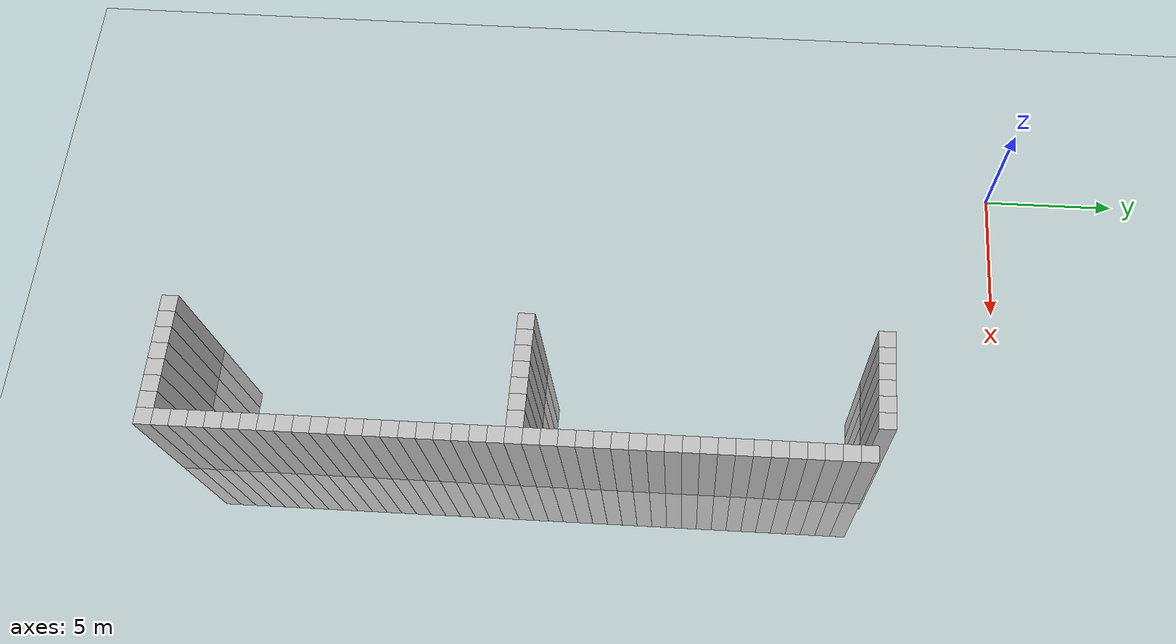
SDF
<sdf version="1.6">
 <world name="default">
  <model name="ground_plane">
   <static>1</static>
   <link name="link">
    <collision name="collision">
     <geometry><plane><normal>0 0 1</normal><size>100 100</size></plane></geometry>
     <surface><friction><ode><mu>100</mu><mu2>50</mu2></ode></friction></surface>
    </collision>
    <visual name="visual">
     <cast_shadows>0</cast_shadows>
     <geometry><plane><normal>0 0 1</normal><size>100 100</size></plane></geometry>
     <material>
      <script><uri>file://media/materials/scripts/gazebo.material</uri><name>Gazebo/Grey</name></script>
     </material>
    </visual>
   </link>
  </model>
  <model name="unit_cylinder_769">
   <static>1</static>
   <pose>8.4 -30 0 0 -0 0</pose>
   <link name="link">
    <inertial>
     <mass>1</mass>
     <inertia><ixx>0.145833</ixx><ixy>0</ixy><ixz>0</ixz><iyy>0.145833</iyy><iyz>0</iyz><izz>0.125</izz></inertia>
    </inertial>
    <collision name="collision"><geometry><box><size>0.6 0.6 10</size></box></geometry></collision>
    <visual name="visual">
     <geometry><box><size>0.6 0.6 10</size></box></geometry>
     <material><ambient>0.753 0.753 0.753 1</ambient><diffuse>0.753 0.753 0.753 1</diffuse></material>
     <material>
      <script><name>Gazebo/Grey</name><uri>file://media/materials/scripts/gazebo.material</uri></script>
     </material>
    </visual>
   </link>
  </model>
  <model name="unit_cylinder_770">
   <static>1</static>
   <pose>8.4 -17.4 0 0 -0 0</pose>
   <link name="link">
    <inertial>
     <mass>1</mass>
     <inertia><ixx>0.145833</ixx><ixy>0</ixy><ixz>0</ixz><iyy>0.145833</iyy><iyz>0</iyz><izz>0.125</izz></inertia>
    </inertial>
    <collision name="collision"><geometry><box><size>0.6 0.6 10</size></box></geometry></collision>
    <visual name="visual">
     <geometry><box><size>0.6 0.6 10</size></box></geometry>
     <material><ambient>0.753 0.753 0.753 1</ambient><diffuse>0.753 0.753 0.753 1</diffuse></material>
     <material>
      <script><name>Gazebo/Grey</name><uri>file://media/materials/scripts/gazebo.material</uri></script>
     </material>
    </visual>
   </link>
  </model>
  <model name="unit_cylinder_771">
   <static>1</static>
   <pose>8.4 -4.8 0 0 -0 0</pose>
   <link name="link">
    <inertial>
     <mass>1</mass>
     <inertia><ixx>0.145833</ixx><ixy>0</ixy><ixz>0</ixz><iyy>0.145833</iyy><iyz>0</iyz><izz>0.125</izz></inertia>
    </inertial>
    <collision name="collision"><geometry><box><size>0.6 0.6 10</size></box></geometry></collision>
    <visual name="visual">
     <geometry><box><size>0.6 0.6 10</size></box></geometry>
     <material><ambient>0.753 0.753 0.753 1</ambient><diffuse>0.753 0.753 0.753 1</diffuse></material>
     <material>
      <script><name>Gazebo/Grey</name><uri>file://media/materials/scripts/gazebo.material</uri></script>
     </material>
    </visual>
   </link>
  </model>
  <model name="unit_cylinder_772">
   <static>1</static>
   <pose>9 -30 0 0 -0 0</pose>
   <link name="link">
    <inertial>
     <mass>1</mass>
     <inertia><ixx>0.145833</ixx><ixy>0</ixy><ixz>0</ixz><iyy>0.145833</iyy><iyz>0</iyz><izz>0.125</izz></inertia>
    </inertial>
    <collision name="collision"><geometry><box><size>0.6 0.6 10</size></box></geometry></collision>
    <visual name="visual">
     <geometry><box><size>0.6 0.6 10</size></box></geometry>
     <material><ambient>0.753 0.753 0.753 1</ambient><diffuse>0.753 0.753 0.753 1</diffuse></material>
     <material>
      <script><name>Gazebo/Grey</name><uri>file://media/materials/scripts/gazebo.material</uri></script>
     </material>
    </visual>
   </link>
  </model>
  <model name="unit_cylinder_773">
   <static>1</static>
   <pose>9 -17.4 0 0 -0 0</pose>
   <link name="link">
    <inertial>
     <mass>1</mass>
     <inertia><ixx>0.145833</ixx><ixy>0</ixy><ixz>0</ixz><iyy>0.145833</iyy><iyz>0</iyz><izz>0.125</izz></inertia>
    </inertial>
    <collision name="collision"><geometry><box><size>0.6 0.6 10</size></box></geometry></collision>
    <visual name="visual">
     <geometry><box><size>0.6 0.6 10</size></box></geometry>
     <material><ambient>0.753 0.753 0.753 1</ambient><diffuse>0.753 0.753 0.753 1</diffuse></material>
     <material>
      <script><name>Gazebo/Grey</name><uri>file://media/materials/scripts/gazebo.material</uri></script>
     </material>
    </visual>
   </link>
  </model>
  <model name="unit_cylinder_774">
   <static>1</static>
   <pose>9 -4.8 0 0 -0 0</pose>
   <link name="link">
    <inertial>
     <mass>1</mass>
     <inertia><ixx>0.145833</ixx><ixy>0</ixy><ixz>0</ixz><iyy>0.145833</iyy><iyz>0</iyz><izz>0.125</izz></inertia>
    </inertial>
    <collision name="collision"><geometry><box><size>0.6 0.6 10</size></box></geometry></collision>
    <visual name="visual">
     <geometry><box><size>0.6 0.6 10</size></box></geometry>
     <material><ambient>0.753 0.753 0.753 1</ambient><diffuse>0.753 0.753 0.753 1</diffuse></material>
     <material>
      <script><name>Gazebo/Grey</name><uri>file://media/materials/scripts/gazebo.material</uri></script>
     </material>
    </visual>
   </link>
  </model>
  <model name="unit_cylinder_775">
   <static>1</static>
   <pose>9.6 -30 0 0 -0 0</pose>
   <link name="link">
    <inertial>
     <mass>1</mass>
     <inertia><ixx>0.145833</ixx><ixy>0</ixy><ixz>0</ixz><iyy>0.145833</iyy><iyz>0</iyz><izz>0.125</izz></inertia>
    </inertial>
    <collision name="collision"><geometry><box><size>0.6 0.6 10</size></box></geometry></collision>
    <visual name="visual">
     <geometry><box><size>0.6 0.6 10</size></box></geometry>
     <material><ambient>0.753 0.753 0.753 1</ambient><diffuse>0.753 0.753 0.753 1</diffuse></material>
     <material>
      <script><name>Gazebo/Grey</name><uri>file://media/materials/scripts/gazebo.material</uri></script>
     </material>
    </visual>
   </link>
  </model>
  <model name="unit_cylinder_776">
   <static>1</static>
   <pose>9.6 -17.4 0 0 -0 0</pose>
   <link name="link">
    <inertial>
     <mass>1</mass>
     <inertia><ixx>0.145833</ixx><ixy>0</ixy><ixz>0</ixz><iyy>0.145833</iyy><iyz>0</iyz><izz>0.125</izz></inertia>
    </inertial>
    <collision name="collision"><geometry><box><size>0.6 0.6 10</size></box></geometry></collision>
    <visual name="visual">
     <geometry><box><size>0.6 0.6 10</size></box></geometry>
     <material><ambient>0.753 0.753 0.753 1</ambient><diffuse>0.753 0.753 0.753 1</diffuse></material>
     <material>
      <script><name>Gazebo/Grey</name><uri>file://media/materials/scripts/gazebo.material</uri></script>
     </material>
    </visual>
   </link>
  </model>
  <model name="unit_cylinder_777">
   <static>1</static>
   <pose>9.6 -4.8 0 0 -0 0</pose>
   <link name="link">
    <inertial>
     <mass>1</mass>
     <inertia><ixx>0.145833</ixx><ixy>0</ixy><ixz>0</ixz><iyy>0.145833</iyy><iyz>0</iyz><izz>0.125</izz></inertia>
    </inertial>
    <collision name="collision"><geometry><box><size>0.6 0.6 10</size></box></geometry></collision>
    <visual name="visual">
     <geometry><box><size>0.6 0.6 10</size></box></geometry>
     <material><ambient>0.753 0.753 0.753 1</ambient><diffuse>0.753 0.753 0.753 1</diffuse></material>
     <material>
      <script><name>Gazebo/Grey</name><uri>file://media/materials/scripts/gazebo.material</uri></script>
     </material>
    </visual>
   </link>
  </model>
  <model name="unit_cylinder_778">
   <static>1</static>
   <pose>10.2 -30 0 0 -0 0</pose>
   <link name="link">
    <inertial>
     <mass>1</mass>
     <inertia><ixx>0.145833</ixx><ixy>0</ixy><ixz>0</ixz><iyy>0.145833</iyy><iyz>0</iyz><izz>0.125</izz></inertia>
    </inertial>
    <collision name="collision"><geometry><box><size>0.6 0.6 10</size></box></geometry></collision>
    <visual name="visual">
     <geometry><box><size>0.6 0.6 10</size></box></geometry>
     <material><ambient>0.753 0.753 0.753 1</ambient><diffuse>0.753 0.753 0.753 1</diffuse></material>
     <material>
      <script><name>Gazebo/Grey</name><uri>file://media/materials/scripts/gazebo.material</uri></script>
     </material>
    </visual>
   </link>
  </model>
  <model name="unit_cylinder_779">
   <static>1</static>
   <pose>10.2 -17.4 0 0 -0 0</pose>
   <link name="link">
    <inertial>
     <mass>1</mass>
     <inertia><ixx>0.145833</ixx><ixy>0</ixy><ixz>0</ixz><iyy>0.145833</iyy><iyz>0</iyz><izz>0.125</izz></inertia>
    </inertial>
    <collision name="collision"><geometry><box><size>0.6 0.6 10</size></box></geometry></collision>
    <visual name="visual">
     <geometry><box><size>0.6 0.6 10</size></box></geometry>
     <material><ambient>0.753 0.753 0.753 1</ambient><diffuse>0.753 0.753 0.753 1</diffuse></material>
     <material>
      <script><name>Gazebo/Grey</name><uri>file://media/materials/scripts/gazebo.material</uri></script>
     </material>
    </visual>
   </link>
  </model>
  <model name="unit_cylinder_780">
   <static>1</static>
   <pose>10.2 -4.8 0 0 -0 0</pose>
   <link name="link">
    <inertial>
     <mass>1</mass>
     <inertia><ixx>0.145833</ixx><ixy>0</ixy><ixz>0</ixz><iyy>0.145833</iyy><iyz>0</iyz><izz>0.125</izz></inertia>
    </inertial>
    <collision name="collision"><geometry><box><size>0.6 0.6 10</size></box></geometry></collision>
    <visual name="visual">
     <geometry><box><size>0.6 0.6 10</size></box></geometry>
     <material><ambient>0.753 0.753 0.753 1</ambient><diffuse>0.753 0.753 0.753 1</diffuse></material>
     <material>
      <script><name>Gazebo/Grey</name><uri>file://media/materials/scripts/gazebo.material</uri></script>
     </material>
    </visual>
   </link>
  </model>
  <model name="unit_cylinder_781">
   <static>1</static>
   <pose>10.8 -30 0 0 -0 0</pose>
   <link name="link">
    <inertial>
     <mass>1</mass>
     <inertia><ixx>0.145833</ixx><ixy>0</ixy><ixz>0</ixz><iyy>0.145833</iyy><iyz>0</iyz><izz>0.125</izz></inertia>
    </inertial>
    <collision name="collision"><geometry><box><size>0.6 0.6 10</size></box></geometry></collision>
    <visual name="visual">
     <geometry><box><size>0.6 0.6 10</size></box></geometry>
     <material><ambient>0.753 0.753 0.753 1</ambient><diffuse>0.753 0.753 0.753 1</diffuse></material>
     <material>
      <script><name>Gazebo/Grey</name><uri>file://media/materials/scripts/gazebo.material</uri></script>
     </material>
    </visual>
   </link>
  </model>
  <model name="unit_cylinder_782">
   <static>1</static>
   <pose>10.8 -17.4 0 0 -0 0</pose>
   <link name="link">
    <inertial>
     <mass>1</mass>
     <inertia><ixx>0.145833</ixx><ixy>0</ixy><ixz>0</ixz><iyy>0.145833</iyy><iyz>0</iyz><izz>0.125</izz></inertia>
    </inertial>
    <collision name="collision"><geometry><box><size>0.6 0.6 10</size></box></geometry></collision>
    <visual name="visual">
     <geometry><box><size>0.6 0.6 10</size></box></geometry>
     <material><ambient>0.753 0.753 0.753 1</ambient><diffuse>0.753 0.753 0.753 1</diffuse></material>
     <material>
      <script><name>Gazebo/Grey</name><uri>file://media/materials/scripts/gazebo.material</uri></script>
     </material>
    </visual>
   </link>
  </model>
  <model name="unit_cylinder_783">
   <static>1</static>
   <pose>10.8 -4.8 0 0 -0 0</pose>
   <link name="link">
    <inertial>
     <mass>1</mass>
     <inertia><ixx>0.145833</ixx><ixy>0</ixy><ixz>0</ixz><iyy>0.145833</iyy><iyz>0</iyz><izz>0.125</izz></inertia>
    </inertial>
    <collision name="collision"><geometry><box><size>0.6 0.6 10</size></box></geometry></collision>
    <visual name="visual">
     <geometry><box><size>0.6 0.6 10</size></box></geometry>
     <material><ambient>0.753 0.753 0.753 1</ambient><diffuse>0.753 0.753 0.753 1</diffuse></material>
     <material>
      <script><name>Gazebo/Grey</name><uri>file://media/materials/scripts/gazebo.material</uri></script>
     </material>
    </visual>
   </link>
  </model>
  <model name="unit_cylinder_784">
   <static>1</static>
   <pose>11.4 -30 0 0 -0 0</pose>
   <link name="link">
    <inertial>
     <mass>1</mass>
     <inertia><ixx>0.145833</ixx><ixy>0</ixy><ixz>0</ixz><iyy>0.145833</iyy><iyz>0</iyz><izz>0.125</izz></inertia>
    </inertial>
    <collision name="collision"><geometry><box><size>0.6 0.6 10</size></box></geometry></collision>
    <visual name="visual">
     <geometry><box><size>0.6 0.6 10</size></box></geometry>
     <material><ambient>0.753 0.753 0.753 1</ambient><diffuse>0.753 0.753 0.753 1</diffuse></material>
     <material>
      <script><name>Gazebo/Grey</name><uri>file://media/materials/scripts/gazebo.material</uri></script>
     </material>
    </visual>
   </link>
  </model>
  <model name="unit_cylinder_785">
   <static>1</static>
   <pose>11.4 -17.4 0 0 -0 0</pose>
   <link name="link">
    <inertial>
     <mass>1</mass>
     <inertia><ixx>0.145833</ixx><ixy>0</ixy><ixz>0</ixz><iyy>0.145833</iyy><iyz>0</iyz><izz>0.125</izz></inertia>
    </inertial>
    <collision name="collision"><geometry><box><size>0.6 0.6 10</size></box></geometry></collision>
    <visual name="visual">
     <geometry><box><size>0.6 0.6 10</size></box></geometry>
     <material><ambient>0.753 0.753 0.753 1</ambient><diffuse>0.753 0.753 0.753 1</diffuse></material>
     <material>
      <script><name>Gazebo/Grey</name><uri>file://media/materials/scripts/gazebo.material</uri></script>
     </material>
    </visual>
   </link>
  </model>
  <model name="unit_cylinder_786">
   <static>1</static>
   <pose>11.4 -4.8 0 0 -0 0</pose>
   <link name="link">
    <inertial>
     <mass>1</mass>
     <inertia><ixx>0.145833</ixx><ixy>0</ixy><ixz>0</ixz><iyy>0.145833</iyy><iyz>0</iyz><izz>0.125</izz></inertia>
    </inertial>
    <collision name="collision"><geometry><box><size>0.6 0.6 10</size></box></geometry></collision>
    <visual name="visual">
     <geometry><box><size>0.6 0.6 10</size></box></geometry>
     <material><ambient>0.753 0.753 0.753 1</ambient><diffuse>0.753 0.753 0.753 1</diffuse></material>
     <material>
      <script><name>Gazebo/Grey</name><uri>file://media/materials/scripts/gazebo.material</uri></script>
     </material>
    </visual>
   </link>
  </model>
  <model name="unit_cylinder_787">
   <static>1</static>
   <pose>12 -30 0 0 -0 0</pose>
   <link name="link">
    <inertial>
     <mass>1</mass>
     <inertia><ixx>0.145833</ixx><ixy>0</ixy><ixz>0</ixz><iyy>0.145833</iyy><iyz>0</iyz><izz>0.125</izz></inertia>
    </inertial>
    <collision name="collision"><geometry><box><size>0.6 0.6 10</size></box></geometry></collision>
    <visual name="visual">
     <geometry><box><size>0.6 0.6 10</size></box></geometry>
     <material><ambient>0.753 0.753 0.753 1</ambient><diffuse>0.753 0.753 0.753 1</diffuse></material>
     <material>
      <script><name>Gazebo/Grey</name><uri>file://media/materials/scripts/gazebo.material</uri></script>
     </material>
    </visual>
   </link>
  </model>
  <model name="unit_cylinder_788">
   <static>1</static>
   <pose>12 -17.4 0 0 -0 0</pose>
   <link name="link">
    <inertial>
     <mass>1</mass>
     <inertia><ixx>0.145833</ixx><ixy>0</ixy><ixz>0</ixz><iyy>0.145833</iyy><iyz>0</iyz><izz>0.125</izz></inertia>
    </inertial>
    <collision name="collision"><geometry><box><size>0.6 0.6 10</size></box></geometry></collision>
    <visual name="visual">
     <geometry><box><size>0.6 0.6 10</size></box></geometry>
     <material><ambient>0.753 0.753 0.753 1</ambient><diffuse>0.753 0.753 0.753 1</diffuse></material>
     <material>
      <script><name>Gazebo/Grey</name><uri>file://media/materials/scripts/gazebo.material</uri></script>
     </material>
    </visual>
   </link>
  </model>
  <model name="unit_cylinder_790">
   <static>1</static>
   <pose>12.6 -30 0 0 -0 0</pose>
   <link name="link">
    <inertial>
     <mass>1</mass>
     <inertia><ixx>0.145833</ixx><ixy>0</ixy><ixz>0</ixz><iyy>0.145833</iyy><iyz>0</iyz><izz>0.125</izz></inertia>
    </inertial>
    <collision name="collision"><geometry><box><size>0.6 0.6 10</size></box></geometry></collision>
    <visual name="visual">
     <geometry><box><size>0.6 0.6 10</size></box></geometry>
     <material><ambient>0.753 0.753 0.753 1</ambient><diffuse>0.753 0.753 0.753 1</diffuse></material>
     <material>
      <script><name>Gazebo/Grey</name><uri>file://media/materials/scripts/gazebo.material</uri></script>
     </material>
    </visual>
   </link>
  </model>
  <model name="unit_cylinder_791">
   <static>1</static>
   <pose>12.6 -29.4 0 0 -0 0</pose>
   <link name="link">
    <inertial>
     <mass>1</mass>
     <inertia><ixx>0.145833</ixx><ixy>0</ixy><ixz>0</ixz><iyy>0.145833</iyy><iyz>0</iyz><izz>0.125</izz></inertia>
    </inertial>
    <collision name="collision"><geometry><box><size>0.6 0.6 10</size></box></geometry></collision>
    <visual name="visual">
     <geometry><box><size>0.6 0.6 10</size></box></geometry>
     <material><ambient>0.753 0.753 0.753 1</ambient><diffuse>0.753 0.753 0.753 1</diffuse></material>
     <material>
      <script><name>Gazebo/Grey</name><uri>file://media/materials/scripts/gazebo.material</uri></script>
     </material>
    </visual>
   </link>
  </model>
  <model name="unit_cylinder_792">
   <static>1</static>
   <pose>12.6 -28.8 0 0 -0 0</pose>
   <link name="link">
    <inertial>
     <mass>1</mass>
     <inertia><ixx>0.145833</ixx><ixy>0</ixy><ixz>0</ixz><iyy>0.145833</iyy><iyz>0</iyz><izz>0.125</izz></inertia>
    </inertial>
    <collision name="collision"><geometry><box><size>0.6 0.6 10</size></box></geometry></collision>
    <visual name="visual">
     <geometry><box><size>0.6 0.6 10</size></box></geometry>
     <material><ambient>0.753 0.753 0.753 1</ambient><diffuse>0.753 0.753 0.753 1</diffuse></material>
     <material>
      <script><name>Gazebo/Grey</name><uri>file://media/materials/scripts/gazebo.material</uri></script>
     </material>
    </visual>
   </link>
  </model>
  <model name="unit_cylinder_793">
   <static>1</static>
   <pose>12.6 -28.2 0 0 -0 0</pose>
   <link name="link">
    <inertial>
     <mass>1</mass>
     <inertia><ixx>0.145833</ixx><ixy>0</ixy><ixz>0</ixz><iyy>0.145833</iyy><iyz>0</iyz><izz>0.125</izz></inertia>
    </inertial>
    <collision name="collision"><geometry><box><size>0.6 0.6 10</size></box></geometry></collision>
    <visual name="visual">
     <geometry><box><size>0.6 0.6 10</size></box></geometry>
     <material><ambient>0.753 0.753 0.753 1</ambient><diffuse>0.753 0.753 0.753 1</diffuse></material>
     <material>
      <script><name>Gazebo/Grey</name><uri>file://media/materials/scripts/gazebo.material</uri></script>
     </material>
    </visual>
   </link>
  </model>
  <model name="unit_cylinder_794">
   <static>1</static>
   <pose>12.6 -27.6 0 0 -0 0</pose>
   <link name="link">
    <inertial>
     <mass>1</mass>
     <inertia><ixx>0.145833</ixx><ixy>0</ixy><ixz>0</ixz><iyy>0.145833</iyy><iyz>0</iyz><izz>0.125</izz></inertia>
    </inertial>
    <collision name="collision"><geometry><box><size>0.6 0.6 10</size></box></geometry></collision>
    <visual name="visual">
     <geometry><box><size>0.6 0.6 10</size></box></geometry>
     <material><ambient>0.753 0.753 0.753 1</ambient><diffuse>0.753 0.753 0.753 1</diffuse></material>
     <material>
      <script><name>Gazebo/Grey</name><uri>file://media/materials/scripts/gazebo.material</uri></script>
     </material>
    </visual>
   </link>
  </model>
  <model name="unit_cylinder_795">
   <static>1</static>
   <pose>12.6 -27 0 0 -0 0</pose>
   <link name="link">
    <inertial>
     <mass>1</mass>
     <inertia><ixx>0.145833</ixx><ixy>0</ixy><ixz>0</ixz><iyy>0.145833</iyy><iyz>0</iyz><izz>0.125</izz></inertia>
    </inertial>
    <collision name="collision"><geometry><box><size>0.6 0.6 10</size></box></geometry></collision>
    <visual name="visual">
     <geometry><box><size>0.6 0.6 10</size></box></geometry>
     <material><ambient>0.753 0.753 0.753 1</ambient><diffuse>0.753 0.753 0.753 1</diffuse></material>
     <material>
      <script><name>Gazebo/Grey</name><uri>file://media/materials/scripts/gazebo.material</uri></script>
     </material>
    </visual>
   </link>
  </model>
  <model name="unit_cylinder_796">
   <static>1</static>
   <pose>12.6 -26.4 0 0 -0 0</pose>
   <link name="link">
    <inertial>
     <mass>1</mass>
     <inertia><ixx>0.145833</ixx><ixy>0</ixy><ixz>0</ixz><iyy>0.145833</iyy><iyz>0</iyz><izz>0.125</izz></inertia>
    </inertial>
    <collision name="collision"><geometry><box><size>0.6 0.6 10</size></box></geometry></collision>
    <visual name="visual">
     <geometry><box><size>0.6 0.6 10</size></box></geometry>
     <material><ambient>0.753 0.753 0.753 1</ambient><diffuse>0.753 0.753 0.753 1</diffuse></material>
     <material>
      <script><name>Gazebo/Grey</name><uri>file://media/materials/scripts/gazebo.material</uri></script>
     </material>
    </visual>
   </link>
  </model>
  <model name="unit_cylinder_797">
   <static>1</static>
   <pose>12.6 -25.8 0 0 -0 0</pose>
   <link name="link">
    <inertial>
     <mass>1</mass>
     <inertia><ixx>0.145833</ixx><ixy>0</ixy><ixz>0</ixz><iyy>0.145833</iyy><iyz>0</iyz><izz>0.125</izz></inertia>
    </inertial>
    <collision name="collision"><geometry><box><size>0.6 0.6 10</size></box></geometry></collision>
    <visual name="visual">
     <geometry><box><size>0.6 0.6 10</size></box></geometry>
     <material><ambient>0.753 0.753 0.753 1</ambient><diffuse>0.753 0.753 0.753 1</diffuse></material>
     <material>
      <script><name>Gazebo/Grey</name><uri>file://media/materials/scripts/gazebo.material</uri></script>
     </material>
    </visual>
   </link>
  </model>
  <model name="unit_cylinder_798">
   <static>1</static>
   <pose>12.6 -25.2 0 0 -0 0</pose>
   <link name="link">
    <inertial>
     <mass>1</mass>
     <inertia><ixx>0.145833</ixx><ixy>0</ixy><ixz>0</ixz><iyy>0.145833</iyy><iyz>0</iyz><izz>0.125</izz></inertia>
    </inertial>
    <collision name="collision"><geometry><box><size>0.6 0.6 10</size></box></geometry></collision>
    <visual name="visual">
     <geometry><box><size>0.6 0.6 10</size></box></geometry>
     <material><ambient>0.753 0.753 0.753 1</ambient><diffuse>0.753 0.753 0.753 1</diffuse></material>
     <material>
      <script><name>Gazebo/Grey</name><uri>file://media/materials/scripts/gazebo.material</uri></script>
     </material>
    </visual>
   </link>
  </model>
  <model name="unit_cylinder_799">
   <static>1</static>
   <pose>12.6 -24.6 0 0 -0 0</pose>
   <link name="link">
    <inertial>
     <mass>1</mass>
     <inertia><ixx>0.145833</ixx><ixy>0</ixy><ixz>0</ixz><iyy>0.145833</iyy><iyz>0</iyz><izz>0.125</izz></inertia>
    </inertial>
    <collision name="collision"><geometry><box><size>0.6 0.6 10</size></box></geometry></collision>
    <visual name="visual">
     <geometry><box><size>0.6 0.6 10</size></box></geometry>
     <material><ambient>0.753 0.753 0.753 1</ambient><diffuse>0.753 0.753 0.753 1</diffuse></material>
     <material>
      <script><name>Gazebo/Grey</name><uri>file://media/materials/scripts/gazebo.material</uri></script>
     </material>
    </visual>
   </link>
  </model>
  <model name="unit_cylinder_800">
   <static>1</static>
   <pose>12.6 -24 0 0 -0 0</pose>
   <link name="link">
    <inertial>
     <mass>1</mass>
     <inertia><ixx>0.145833</ixx><ixy>0</ixy><ixz>0</ixz><iyy>0.145833</iyy><iyz>0</iyz><izz>0.125</izz></inertia>
    </inertial>
    <collision name="collision"><geometry><box><size>0.6 0.6 10</size></box></geometry></collision>
    <visual name="visual">
     <geometry><box><size>0.6 0.6 10</size></box></geometry>
     <material><ambient>0.753 0.753 0.753 1</ambient><diffuse>0.753 0.753 0.753 1</diffuse></material>
     <material>
      <script><name>Gazebo/Grey</name><uri>file://media/materials/scripts/gazebo.material</uri></script>
     </material>
    </visual>
   </link>
  </model>
  <model name="unit_cylinder_801">
   <static>1</static>
   <pose>12.6 -23.4 0 0 -0 0</pose>
   <link name="link">
    <inertial>
     <mass>1</mass>
     <inertia><ixx>0.145833</ixx><ixy>0</ixy><ixz>0</ixz><iyy>0.145833</iyy><iyz>0</iyz><izz>0.125</izz></inertia>
    </inertial>
    <collision name="collision"><geometry><box><size>0.6 0.6 10</size></box></geometry></collision>
    <visual name="visual">
     <geometry><box><size>0.6 0.6 10</size></box></geometry>
     <material><ambient>0.753 0.753 0.753 1</ambient><diffuse>0.753 0.753 0.753 1</diffuse></material>
     <material>
      <script><name>Gazebo/Grey</name><uri>file://media/materials/scripts/gazebo.material</uri></script>
     </material>
    </visual>
   </link>
  </model>
  <model name="unit_cylinder_802">
   <static>1</static>
   <pose>12.6 -22.8 0 0 -0 0</pose>
   <link name="link">
    <inertial>
     <mass>1</mass>
     <inertia><ixx>0.145833</ixx><ixy>0</ixy><ixz>0</ixz><iyy>0.145833</iyy><iyz>0</iyz><izz>0.125</izz></inertia>
    </inertial>
    <collision name="collision"><geometry><box><size>0.6 0.6 10</size></box></geometry></collision>
    <visual name="visual">
     <geometry><box><size>0.6 0.6 10</size></box></geometry>
     <material><ambient>0.753 0.753 0.753 1</ambient><diffuse>0.753 0.753 0.753 1</diffuse></material>
     <material>
      <script><name>Gazebo/Grey</name><uri>file://media/materials/scripts/gazebo.material</uri></script>
     </material>
    </visual>
   </link>
  </model>
  <model name="unit_cylinder_803">
   <static>1</static>
   <pose>12.6 -22.2 0 0 -0 0</pose>
   <link name="link">
    <inertial>
     <mass>1</mass>
     <inertia><ixx>0.145833</ixx><ixy>0</ixy><ixz>0</ixz><iyy>0.145833</iyy><iyz>0</iyz><izz>0.125</izz></inertia>
    </inertial>
    <collision name="collision"><geometry><box><size>0.6 0.6 10</size></box></geometry></collision>
    <visual name="visual">
     <geometry><box><size>0.6 0.6 10</size></box></geometry>
     <material><ambient>0.753 0.753 0.753 1</ambient><diffuse>0.753 0.753 0.753 1</diffuse></material>
     <material>
      <script><name>Gazebo/Grey</name><uri>file://media/materials/scripts/gazebo.material</uri></script>
     </material>
    </visual>
   </link>
  </model>
  <model name="unit_cylinder_804">
   <static>1</static>
   <pose>12.6 -21.6 0 0 -0 0</pose>
   <link name="link">
    <inertial>
     <mass>1</mass>
     <inertia><ixx>0.145833</ixx><ixy>0</ixy><ixz>0</ixz><iyy>0.145833</iyy><iyz>0</iyz><izz>0.125</izz></inertia>
    </inertial>
    <collision name="collision"><geometry><box><size>0.6 0.6 10</size></box></geometry></collision>
    <visual name="visual">
     <geometry><box><size>0.6 0.6 10</size></box></geometry>
     <material><ambient>0.753 0.753 0.753 1</ambient><diffuse>0.753 0.753 0.753 1</diffuse></material>
     <material>
      <script><name>Gazebo/Grey</name><uri>file://media/materials/scripts/gazebo.material</uri></script>
     </material>
    </visual>
   </link>
  </model>
  <model name="unit_cylinder_805">
   <static>1</static>
   <pose>12.6 -21 0 0 -0 0</pose>
   <link name="link">
    <inertial>
     <mass>1</mass>
     <inertia><ixx>0.145833</ixx><ixy>0</ixy><ixz>0</ixz><iyy>0.145833</iyy><iyz>0</iyz><izz>0.125</izz></inertia>
    </inertial>
    <collision name="collision"><geometry><box><size>0.6 0.6 10</size></box></geometry></collision>
    <visual name="visual">
     <geometry><box><size>0.6 0.6 10</size></box></geometry>
     <material><ambient>0.753 0.753 0.753 1</ambient><diffuse>0.753 0.753 0.753 1</diffuse></material>
     <material>
      <script><name>Gazebo/Grey</name><uri>file://media/materials/scripts/gazebo.material</uri></script>
     </material>
    </visual>
   </link>
  </model>
  <model name="unit_cylinder_806">
   <static>1</static>
   <pose>12.6 -20.4 0 0 -0 0</pose>
   <link name="link">
    <inertial>
     <mass>1</mass>
     <inertia><ixx>0.145833</ixx><ixy>0</ixy><ixz>0</ixz><iyy>0.145833</iyy><iyz>0</iyz><izz>0.125</izz></inertia>
    </inertial>
    <collision name="collision"><geometry><box><size>0.6 0.6 10</size></box></geometry></collision>
    <visual name="visual">
     <geometry><box><size>0.6 0.6 10</size></box></geometry>
     <material><ambient>0.753 0.753 0.753 1</ambient><diffuse>0.753 0.753 0.753 1</diffuse></material>
     <material>
      <script><name>Gazebo/Grey</name><uri>file://media/materials/scripts/gazebo.material</uri></script>
     </material>
    </visual>
   </link>
  </model>
  <model name="unit_cylinder_807">
   <static>1</static>
   <pose>12.6 -19.8 0 0 -0 0</pose>
   <link name="link">
    <inertial>
     <mass>1</mass>
     <inertia><ixx>0.145833</ixx><ixy>0</ixy><ixz>0</ixz><iyy>0.145833</iyy><iyz>0</iyz><izz>0.125</izz></inertia>
    </inertial>
    <collision name="collision"><geometry><box><size>0.6 0.6 10</size></box></geometry></collision>
    <visual name="visual">
     <geometry><box><size>0.6 0.6 10</size></box></geometry>
     <material><ambient>0.753 0.753 0.753 1</ambient><diffuse>0.753 0.753 0.753 1</diffuse></material>
     <material>
      <script><name>Gazebo/Grey</name><uri>file://media/materials/scripts/gazebo.material</uri></script>
     </material>
    </visual>
   </link>
  </model>
  <model name="unit_cylinder_808">
   <static>1</static>
   <pose>12.6 -19.2 0 0 -0 0</pose>
   <link name="link">
    <inertial>
     <mass>1</mass>
     <inertia><ixx>0.145833</ixx><ixy>0</ixy><ixz>0</ixz><iyy>0.145833</iyy><iyz>0</iyz><izz>0.125</izz></inertia>
    </inertial>
    <collision name="collision"><geometry><box><size>0.6 0.6 10</size></box></geometry></collision>
    <visual name="visual">
     <geometry><box><size>0.6 0.6 10</size></box></geometry>
     <material><ambient>0.753 0.753 0.753 1</ambient><diffuse>0.753 0.753 0.753 1</diffuse></material>
     <material>
      <script><name>Gazebo/Grey</name><uri>file://media/materials/scripts/gazebo.material</uri></script>
     </material>
    </visual>
   </link>
  </model>
  <model name="unit_cylinder_809">
   <static>1</static>
   <pose>12.6 -18.6 0 0 -0 0</pose>
   <link name="link">
    <inertial>
     <mass>1</mass>
     <inertia><ixx>0.145833</ixx><ixy>0</ixy><ixz>0</ixz><iyy>0.145833</iyy><iyz>0</iyz><izz>0.125</izz></inertia>
    </inertial>
    <collision name="collision"><geometry><box><size>0.6 0.6 10</size></box></geometry></collision>
    <visual name="visual">
     <geometry><box><size>0.6 0.6 10</size></box></geometry>
     <material><ambient>0.753 0.753 0.753 1</ambient><diffuse>0.753 0.753 0.753 1</diffuse></material>
     <material>
      <script><name>Gazebo/Grey</name><uri>file://media/materials/scripts/gazebo.material</uri></script>
     </material>
    </visual>
   </link>
  </model>
  <model name="unit_cylinder_810">
   <static>1</static>
   <pose>12.6 -18 0 0 -0 0</pose>
   <link name="link">
    <inertial>
     <mass>1</mass>
     <inertia><ixx>0.145833</ixx><ixy>0</ixy><ixz>0</ixz><iyy>0.145833</iyy><iyz>0</iyz><izz>0.125</izz></inertia>
    </inertial>
    <collision name="collision"><geometry><box><size>0.6 0.6 10</size></box></geometry></collision>
    <visual name="visual">
     <geometry><box><size>0.6 0.6 10</size></box></geometry>
     <material><ambient>0.753 0.753 0.753 1</ambient><diffuse>0.753 0.753 0.753 1</diffuse></material>
     <material>
      <script><name>Gazebo/Grey</name><uri>file://media/materials/scripts/gazebo.material</uri></script>
     </material>
    </visual>
   </link>
  </model>
  <model name="unit_cylinder_811">
   <static>1</static>
   <pose>12.6 -17.4 0 0 -0 0</pose>
   <link name="link">
    <inertial>
     <mass>1</mass>
     <inertia><ixx>0.145833</ixx><ixy>0</ixy><ixz>0</ixz><iyy>0.145833</iyy><iyz>0</iyz><izz>0.125</izz></inertia>
    </inertial>
    <collision name="collision"><geometry><box><size>0.6 0.6 10</size></box></geometry></collision>
    <visual name="visual">
     <geometry><box><size>0.6 0.6 10</size></box></geometry>
     <material><ambient>0.753 0.753 0.753 1</ambient><diffuse>0.753 0.753 0.753 1</diffuse></material>
     <material>
      <script><name>Gazebo/Grey</name><uri>file://media/materials/scripts/gazebo.material</uri></script>
     </material>
    </visual>
   </link>
  </model>
  <model name="unit_cylinder_812">
   <static>1</static>
   <pose>12.6 -16.8 0 0 -0 0</pose>
   <link name="link">
    <inertial>
     <mass>1</mass>
     <inertia><ixx>0.145833</ixx><ixy>0</ixy><ixz>0</ixz><iyy>0.145833</iyy><iyz>0</iyz><izz>0.125</izz></inertia>
    </inertial>
    <collision name="collision"><geometry><box><size>0.6 0.6 10</size></box></geometry></collision>
    <visual name="visual">
     <geometry><box><size>0.6 0.6 10</size></box></geometry>
     <material><ambient>0.753 0.753 0.753 1</ambient><diffuse>0.753 0.753 0.753 1</diffuse></material>
     <material>
      <script><name>Gazebo/Grey</name><uri>file://media/materials/scripts/gazebo.material</uri></script>
     </material>
    </visual>
   </link>
  </model>
  <model name="unit_cylinder_813">
   <static>1</static>
   <pose>12.6 -16.2 0 0 -0 0</pose>
   <link name="link">
    <inertial>
     <mass>1</mass>
     <inertia><ixx>0.145833</ixx><ixy>0</ixy><ixz>0</ixz><iyy>0.145833</iyy><iyz>0</iyz><izz>0.125</izz></inertia>
    </inertial>
    <collision name="collision"><geometry><box><size>0.6 0.6 10</size></box></geometry></collision>
    <visual name="visual">
     <geometry><box><size>0.6 0.6 10</size></box></geometry>
     <material><ambient>0.753 0.753 0.753 1</ambient><diffuse>0.753 0.753 0.753 1</diffuse></material>
     <material>
      <script><name>Gazebo/Grey</name><uri>file://media/materials/scripts/gazebo.material</uri></script>
     </material>
    </visual>
   </link>
  </model>
  <model name="unit_cylinder_814">
   <static>1</static>
   <pose>12.6 -15.6 0 0 -0 0</pose>
   <link name="link">
    <inertial>
     <mass>1</mass>
     <inertia><ixx>0.145833</ixx><ixy>0</ixy><ixz>0</ixz><iyy>0.145833</iyy><iyz>0</iyz><izz>0.125</izz></inertia>
    </inertial>
    <collision name="collision"><geometry><box><size>0.6 0.6 10</size></box></geometry></collision>
    <visual name="visual">
     <geometry><box><size>0.6 0.6 10</size></box></geometry>
     <material><ambient>0.753 0.753 0.753 1</ambient><diffuse>0.753 0.753 0.753 1</diffuse></material>
     <material>
      <script><name>Gazebo/Grey</name><uri>file://media/materials/scripts/gazebo.material</uri></script>
     </material>
    </visual>
   </link>
  </model>
  <model name="unit_cylinder_815">
   <static>1</static>
   <pose>12.6 -15 0 0 -0 0</pose>
   <link name="link">
    <inertial>
     <mass>1</mass>
     <inertia><ixx>0.145833</ixx><ixy>0</ixy><ixz>0</ixz><iyy>0.145833</iyy><iyz>0</iyz><izz>0.125</izz></inertia>
    </inertial>
    <collision name="collision"><geometry><box><size>0.6 0.6 10</size></box></geometry></collision>
    <visual name="visual">
     <geometry><box><size>0.6 0.6 10</size></box></geometry>
     <material><ambient>0.753 0.753 0.753 1</ambient><diffuse>0.753 0.753 0.753 1</diffuse></material>
     <material>
      <script><name>Gazebo/Grey</name><uri>file://media/materials/scripts/gazebo.material</uri></script>
     </material>
    </visual>
   </link>
  </model>
  <model name="unit_cylinder_816">
   <static>1</static>
   <pose>12.6 -14.4 0 0 -0 0</pose>
   <link name="link">
    <inertial>
     <mass>1</mass>
     <inertia><ixx>0.145833</ixx><ixy>0</ixy><ixz>0</ixz><iyy>0.145833</iyy><iyz>0</iyz><izz>0.125</izz></inertia>
    </inertial>
    <collision name="collision"><geometry><box><size>0.6 0.6 10</size></box></geometry></collision>
    <visual name="visual">
     <geometry><box><size>0.6 0.6 10</size></box></geometry>
     <material><ambient>0.753 0.753 0.753 1</ambient><diffuse>0.753 0.753 0.753 1</diffuse></material>
     <material>
      <script><name>Gazebo/Grey</name><uri>file://media/materials/scripts/gazebo.material</uri></script>
     </material>
    </visual>
   </link>
  </model>
  <model name="unit_cylinder_817">
   <static>1</static>
   <pose>12.6 -13.8 0 0 -0 0</pose>
   <link name="link">
    <inertial>
     <mass>1</mass>
     <inertia><ixx>0.145833</ixx><ixy>0</ixy><ixz>0</ixz><iyy>0.145833</iyy><iyz>0</iyz><izz>0.125</izz></inertia>
    </inertial>
    <collision name="collision"><geometry><box><size>0.6 0.6 10</size></box></geometry></collision>
    <visual name="visual">
     <geometry><box><size>0.6 0.6 10</size></box></geometry>
     <material><ambient>0.753 0.753 0.753 1</ambient><diffuse>0.753 0.753 0.753 1</diffuse></material>
     <material>
      <script><name>Gazebo/Grey</name><uri>file://media/materials/scripts/gazebo.material</uri></script>
     </material>
    </visual>
   </link>
  </model>
  <model name="unit_cylinder_818">
   <static>1</static>
   <pose>12.6 -13.2 0 0 -0 0</pose>
   <link name="link">
    <inertial>
     <mass>1</mass>
     <inertia><ixx>0.145833</ixx><ixy>0</ixy><ixz>0</ixz><iyy>0.145833</iyy><iyz>0</iyz><izz>0.125</izz></inertia>
    </inertial>
    <collision name="collision"><geometry><box><size>0.6 0.6 10</size></box></geometry></collision>
    <visual name="visual">
     <geometry><box><size>0.6 0.6 10</size></box></geometry>
     <material><ambient>0.753 0.753 0.753 1</ambient><diffuse>0.753 0.753 0.753 1</diffuse></material>
     <material>
      <script><name>Gazebo/Grey</name><uri>file://media/materials/scripts/gazebo.material</uri></script>
     </material>
    </visual>
   </link>
  </model>
  <model name="unit_cylinder_819">
   <static>1</static>
   <pose>12.6 -12.6 0 0 -0 0</pose>
   <link name="link">
    <inertial>
     <mass>1</mass>
     <inertia><ixx>0.145833</ixx><ixy>0</ixy><ixz>0</ixz><iyy>0.145833</iyy><iyz>0</iyz><izz>0.125</izz></inertia>
    </inertial>
    <collision name="collision"><geometry><box><size>0.6 0.6 10</size></box></geometry></collision>
    <visual name="visual">
     <geometry><box><size>0.6 0.6 10</size></box></geometry>
     <material><ambient>0.753 0.753 0.753 1</ambient><diffuse>0.753 0.753 0.753 1</diffuse></material>
     <material>
      <script><name>Gazebo/Grey</name><uri>file://media/materials/scripts/gazebo.material</uri></script>
     </material>
    </visual>
   </link>
  </model>
  <model name="unit_cylinder_820">
   <static>1</static>
   <pose>12.6 -12 0 0 -0 0</pose>
   <link name="link">
    <inertial>
     <mass>1</mass>
     <inertia><ixx>0.145833</ixx><ixy>0</ixy><ixz>0</ixz><iyy>0.145833</iyy><iyz>0</iyz><izz>0.125</izz></inertia>
    </inertial>
    <collision name="collision"><geometry><box><size>0.6 0.6 10</size></box></geometry></collision>
    <visual name="visual">
     <geometry><box><size>0.6 0.6 10</size></box></geometry>
     <material><ambient>0.753 0.753 0.753 1</ambient><diffuse>0.753 0.753 0.753 1</diffuse></material>
     <material>
      <script><name>Gazebo/Grey</name><uri>file://media/materials/scripts/gazebo.material</uri></script>
     </material>
    </visual>
   </link>
  </model>
  <model name="unit_cylinder_821">
   <static>1</static>
   <pose>12.6 -11.4 0 0 -0 0</pose>
   <link name="link">
    <inertial>
     <mass>1</mass>
     <inertia><ixx>0.145833</ixx><ixy>0</ixy><ixz>0</ixz><iyy>0.145833</iyy><iyz>0</iyz><izz>0.125</izz></inertia>
    </inertial>
    <collision name="collision"><geometry><box><size>0.6 0.6 10</size></box></geometry></collision>
    <visual name="visual">
     <geometry><box><size>0.6 0.6 10</size></box></geometry>
     <material><ambient>0.753 0.753 0.753 1</ambient><diffuse>0.753 0.753 0.753 1</diffuse></material>
     <material>
      <script><name>Gazebo/Grey</name><uri>file://media/materials/scripts/gazebo.material</uri></script>
     </material>
    </visual>
   </link>
  </model>
  <model name="unit_cylinder_822">
   <static>1</static>
   <pose>12.6 -10.8 0 0 -0 0</pose>
   <link name="link">
    <inertial>
     <mass>1</mass>
     <inertia><ixx>0.145833</ixx><ixy>0</ixy><ixz>0</ixz><iyy>0.145833</iyy><iyz>0</iyz><izz>0.125</izz></inertia>
    </inertial>
    <collision name="collision"><geometry><box><size>0.6 0.6 10</size></box></geometry></collision>
    <visual name="visual">
     <geometry><box><size>0.6 0.6 10</size></box></geometry>
     <material><ambient>0.753 0.753 0.753 1</ambient><diffuse>0.753 0.753 0.753 1</diffuse></material>
     <material>
      <script><name>Gazebo/Grey</name><uri>file://media/materials/scripts/gazebo.material</uri></script>
     </material>
    </visual>
   </link>
  </model>
  <model name="unit_cylinder_823">
   <static>1</static>
   <pose>12.6 -10.2 0 0 -0 0</pose>
   <link name="link">
    <inertial>
     <mass>1</mass>
     <inertia><ixx>0.145833</ixx><ixy>0</ixy><ixz>0</ixz><iyy>0.145833</iyy><iyz>0</iyz><izz>0.125</izz></inertia>
    </inertial>
    <collision name="collision"><geometry><box><size>0.6 0.6 10</size></box></geometry></collision>
    <visual name="visual">
     <geometry><box><size>0.6 0.6 10</size></box></geometry>
     <material><ambient>0.753 0.753 0.753 1</ambient><diffuse>0.753 0.753 0.753 1</diffuse></material>
     <material>
      <script><name>Gazebo/Grey</name><uri>file://media/materials/scripts/gazebo.material</uri></script>
     </material>
    </visual>
   </link>
  </model>
  <model name="unit_cylinder_824">
   <static>1</static>
   <pose>12.6 -9.6 0 0 -0 0</pose>
   <link name="link">
    <inertial>
     <mass>1</mass>
     <inertia><ixx>0.145833</ixx><ixy>0</ixy><ixz>0</ixz><iyy>0.145833</iyy><iyz>0</iyz><izz>0.125</izz></inertia>
    </inertial>
    <collision name="collision"><geometry><box><size>0.6 0.6 10</size></box></geometry></collision>
    <visual name="visual">
     <geometry><box><size>0.6 0.6 10</size></box></geometry>
     <material><ambient>0.753 0.753 0.753 1</ambient><diffuse>0.753 0.753 0.753 1</diffuse></material>
     <material>
      <script><name>Gazebo/Grey</name><uri>file://media/materials/scripts/gazebo.material</uri></script>
     </material>
    </visual>
   </link>
  </model>
  <model name="unit_cylinder_825">
   <static>1</static>
   <pose>12.6 -9 0 0 -0 0</pose>
   <link name="link">
    <inertial>
     <mass>1</mass>
     <inertia><ixx>0.145833</ixx><ixy>0</ixy><ixz>0</ixz><iyy>0.145833</iyy><iyz>0</iyz><izz>0.125</izz></inertia>
    </inertial>
    <collision name="collision"><geometry><box><size>0.6 0.6 10</size></box></geometry></collision>
    <visual name="visual">
     <geometry><box><size>0.6 0.6 10</size></box></geometry>
     <material><ambient>0.753 0.753 0.753 1</ambient><diffuse>0.753 0.753 0.753 1</diffuse></material>
     <material>
      <script><name>Gazebo/Grey</name><uri>file://media/materials/scripts/gazebo.material</uri></script>
     </material>
    </visual>
   </link>
  </model>
  <model name="unit_cylinder_826">
   <static>1</static>
   <pose>12.6 -8.4 0 0 -0 0</pose>
   <link name="link">
    <inertial>
     <mass>1</mass>
     <inertia><ixx>0.145833</ixx><ixy>0</ixy><ixz>0</ixz><iyy>0.145833</iyy><iyz>0</iyz><izz>0.125</izz></inertia>
    </inertial>
    <collision name="collision"><geometry><box><size>0.6 0.6 10</size></box></geometry></collision>
    <visual name="visual">
     <geometry><box><size>0.6 0.6 10</size></box></geometry>
     <material><ambient>0.753 0.753 0.753 1</ambient><diffuse>0.753 0.753 0.753 1</diffuse></material>
     <material>
      <script><name>Gazebo/Grey</name><uri>file://media/materials/scripts/gazebo.material</uri></script>
     </material>
    </visual>
   </link>
  </model>
  <model name="unit_cylinder_827">
   <static>1</static>
   <pose>12.6 -7.8 0 0 -0 0</pose>
   <link name="link">
    <inertial>
     <mass>1</mass>
     <inertia><ixx>0.145833</ixx><ixy>0</ixy><ixz>0</ixz><iyy>0.145833</iyy><iyz>0</iyz><izz>0.125</izz></inertia>
    </inertial>
    <collision name="collision"><geometry><box><size>0.6 0.6 10</size></box></geometry></collision>
    <visual name="visual">
     <geometry><box><size>0.6 0.6 10</size></box></geometry>
     <material><ambient>0.753 0.753 0.753 1</ambient><diffuse>0.753 0.753 0.753 1</diffuse></material>
     <material>
      <script><name>Gazebo/Grey</name><uri>file://media/materials/scripts/gazebo.material</uri></script>
     </material>
    </visual>
   </link>
  </model>
  <model name="unit_cylinder_828">
   <static>1</static>
   <pose>12.6 -7.2 0 0 -0 0</pose>
   <link name="link">
    <inertial>
     <mass>1</mass>
     <inertia><ixx>0.145833</ixx><ixy>0</ixy><ixz>0</ixz><iyy>0.145833</iyy><iyz>0</iyz><izz>0.125</izz></inertia>
    </inertial>
    <collision name="collision"><geometry><box><size>0.6 0.6 10</size></box></geometry></collision>
    <visual name="visual">
     <geometry><box><size>0.6 0.6 10</size></box></geometry>
     <material><ambient>0.753 0.753 0.753 1</ambient><diffuse>0.753 0.753 0.753 1</diffuse></material>
     <material>
      <script><name>Gazebo/Grey</name><uri>file://media/materials/scripts/gazebo.material</uri></script>
     </material>
    </visual>
   </link>
  </model>
  <model name="unit_cylinder_829">
   <static>1</static>
   <pose>12.6 -6.6 0 0 -0 0</pose>
   <link name="link">
    <inertial>
     <mass>1</mass>
     <inertia><ixx>0.145833</ixx><ixy>0</ixy><ixz>0</ixz><iyy>0.145833</iyy><iyz>0</iyz><izz>0.125</izz></inertia>
    </inertial>
    <collision name="collision"><geometry><box><size>0.6 0.6 10</size></box></geometry></collision>
    <visual name="visual">
     <geometry><box><size>0.6 0.6 10</size></box></geometry>
     <material><ambient>0.753 0.753 0.753 1</ambient><diffuse>0.753 0.753 0.753 1</diffuse></material>
     <material>
      <script><name>Gazebo/Grey</name><uri>file://media/materials/scripts/gazebo.material</uri></script>
     </material>
    </visual>
   </link>
  </model>
  <model name="unit_cylinder_830">
   <static>1</static>
   <pose>12.6 -6 0 0 -0 0</pose>
   <link name="link">
    <inertial>
     <mass>1</mass>
     <inertia><ixx>0.145833</ixx><ixy>0</ixy><ixz>0</ixz><iyy>0.145833</iyy><iyz>0</iyz><izz>0.125</izz></inertia>
    </inertial>
    <collision name="collision"><geometry><box><size>0.6 0.6 10</size></box></geometry></collision>
    <visual name="visual">
     <geometry><box><size>0.6 0.6 10</size></box></geometry>
     <material><ambient>0.753 0.753 0.753 1</ambient><diffuse>0.753 0.753 0.753 1</diffuse></material>
     <material>
      <script><name>Gazebo/Grey</name><uri>file://media/materials/scripts/gazebo.material</uri></script>
     </material>
    </visual>
   </link>
  </model>
  <model name="unit_cylinder_831">
   <static>1</static>
   <pose>12.6 -5.4 0 0 -0 0</pose>
   <link name="link">
    <inertial>
     <mass>1</mass>
     <inertia><ixx>0.145833</ixx><ixy>0</ixy><ixz>0</ixz><iyy>0.145833</iyy><iyz>0</iyz><izz>0.125</izz></inertia>
    </inertial>
    <collision name="collision"><geometry><box><size>0.6 0.6 10</size></box></geometry></collision>
    <visual name="visual">
     <geometry><box><size>0.6 0.6 10</size></box></geometry>
     <material><ambient>0.753 0.753 0.753 1</ambient><diffuse>0.753 0.753 0.753 1</diffuse></material>
     <material>
      <script><name>Gazebo/Grey</name><uri>file://media/materials/scripts/gazebo.material</uri></script>
     </material>
    </visual>
   </link>
  </model>
 </world>
</sdf>
